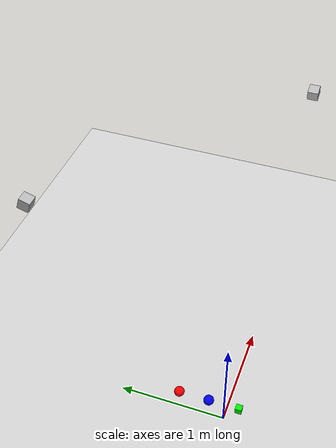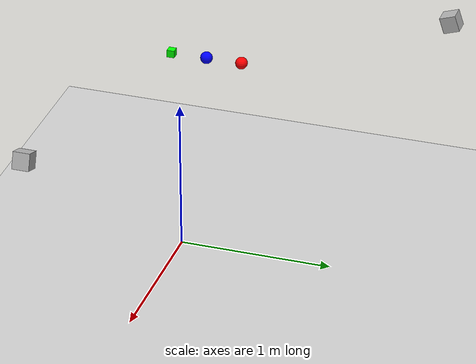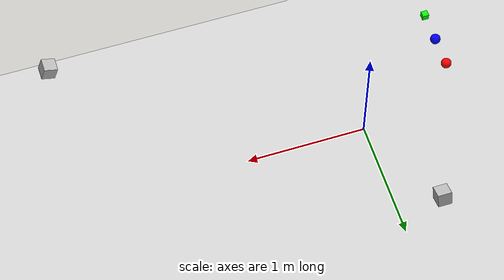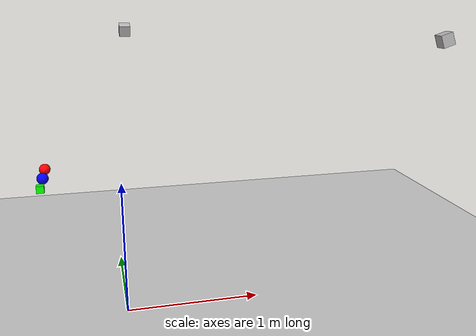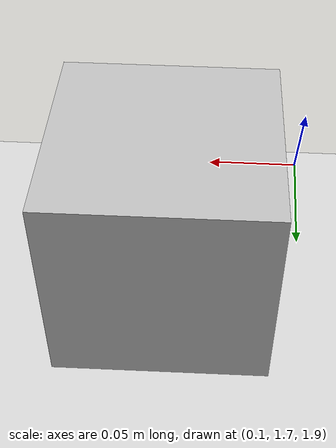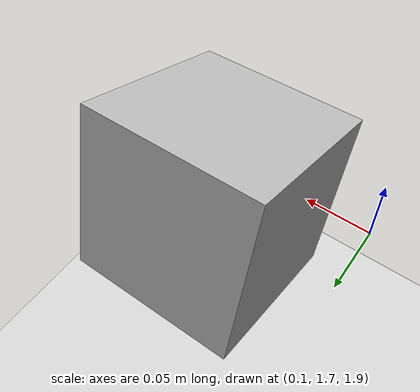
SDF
<sdf version="1.9">
 <world name="ur_simulation_world">
  <physics name="1ms" type="ignored">
   <max_step_size>0.001</max_step_size>
   <real_time_factor>1</real_time_factor>
   <real_time_update_rate>1000</real_time_update_rate>
  </physics>
  <plugin name="ignition::gazebo::systems::Physics" filename="ignition-gazebo-physics-system"/>
  <plugin name="ignition::gazebo::systems::UserCommands" filename="ignition-gazebo-user-commands-system"/>
  <plugin name="ignition::gazebo::systems::SceneBroadcaster" filename="ignition-gazebo-scene-broadcaster-system"/>
  <plugin name="ignition::gazebo::systems::Contact" filename="ignition-gazebo-contact-system"/>
  <gravity>0 0 -9.8</gravity>
  <magnetic_field>6e-06 2.3e-05 -4.2e-05</magnetic_field>
  <atmosphere type="adiabatic"/>
  <scene><ambient>0.4 0.4 0.4 1</ambient><background>0.7 0.7 0.7 1</background><shadows>true</shadows></scene>
  <model name="ground_plane">
   <static>true</static>
   <link name="link">
    <collision name="collision">
     <geometry><plane><normal>0 0 1</normal><size>100 100</size></plane></geometry>
    </collision>
    <visual name="visual">
     <geometry><plane><normal>0 0 1</normal><size>100 100</size></plane></geometry>
     <material>
      <ambient>0.8 0.8 0.8 1</ambient>
      <diffuse>0.8 0.8 0.8 1</diffuse>
      <specular>0.8 0.8 0.8 1</specular>
     </material>
    </visual>
    <inertial>
     <mass>1</mass>
     <inertia><ixx>1</ixx><ixy>0</ixy><ixz>0</ixz><iyy>1</iyy><iyz>0</iyz><izz>1</izz></inertia>
    </inertial>
   </link>
  </model>
  <light name="sun" type="directional">
   <pose>0 0 10 0 -0 0</pose>
   <intensity>1</intensity>
   <direction>-0.5 0.1 -0.9</direction>
   <diffuse>0.8 0.8 0.8 1</diffuse>
   <specular>0.2 0.2 0.2 1</specular>
   <attenuation>
    <range>1000</range>
    <linear>0.01</linear>
    <constant>0.90000000000000002</constant>
    <quadratic>0.001</quadratic>
   </attenuation>
   <spot><inner_angle>0</inner_angle><outer_angle>0</outer_angle><falloff>0</falloff></spot>
  </light>
  <model name="red_sphere">
   <pose>-0.5308 0.2368 1.0805 0 -0 0</pose>
   <link name="red_sphere_link">
    <inertial>
     <inertia>
      <ixx>8.192e-7</ixx>
      <ixy>0</ixy>
      <ixz>0</ixz>
      <iyy>8.192e-7</iyy>
      <iyz>0</iyz>
      <izz>8.192e-7</izz>
     </inertia>
     <mass>0.000512</mass>
    </inertial>
    <collision name="red_sphere_collision">
     <geometry><sphere><radius>0.04</radius></sphere></geometry>
     <surface><friction><ode><mu>1</mu><mu2>1</mu2></ode></friction></surface>
    </collision>
    <visual name="red_sphere_visual">
     <geometry><sphere><radius>0.04</radius></sphere></geometry>
     <material><ambient>1 0 0 1</ambient><diffuse>1 0 0 1</diffuse><specular>1 1 1 1</specular></material>
    </visual>
   </link>
   <static>false</static>
  </model>
  <model name="blue_sphere">
   <pose>-0.5308 0.00 1.0805 0 -0 0</pose>
   <link name="blue_sphere_link">
    <inertial>
     <inertia>
      <ixx>8.192e-7</ixx>
      <ixy>0</ixy>
      <ixz>0</ixz>
      <iyy>8.192e-7</iyy>
      <iyz>0</iyz>
      <izz>8.192e-7</izz>
     </inertia>
     <mass>0.000512</mass>
    </inertial>
    <collision name="blue_sphere_collision">
     <geometry><sphere><radius>0.04</radius></sphere></geometry>
     <surface><friction><ode><mu>1</mu><mu2>1</mu2></ode></friction></surface>
    </collision>
    <visual name="blue_sphere_visual">
     <geometry><sphere><radius>0.04</radius></sphere></geometry>
     <material><ambient>0 0 1 1</ambient><diffuse>0 0 1 1</diffuse><specular>1 1 1 1</specular></material>
    </visual>
   </link>
   <static>false</static>
  </model>
  <model name="green_box">
   <pose>-0.5308 -0.2368 1.0805 0 -0 0</pose>
   <link name="green_box_link">
    <inertial>
     <inertia>
      <ixx>5.20833e-8</ixx>
      <ixy>0</ixy>
      <ixz>0</ixz>
      <iyy>5.20833e-8</iyy>
      <iyz>0</iyz>
      <izz>5.20833e-8</izz>
     </inertia>
     <mass>0.000125</mass>
    </inertial>
    <collision name="box_collision">
     <geometry><box><size>0.05 0.05 0.05</size></box></geometry>
     <surface><friction><ode><mu>1</mu><mu2>1</mu2></ode></friction></surface>
    </collision>
    <visual name="box_visual">
     <geometry><box><size>0.05 0.05 0.05</size></box></geometry>
     <material><ambient>0 1 0 1</ambient><diffuse>0 1 0 1</diffuse><specular>1 1 1 1</specular></material>
    </visual>
   </link>
   <static>false</static>
  </model>
  <model name="camera1">
   <pose>2.54 0.0031 1.943 0.0 0.3146 3.14</pose>
   <link name="camera1_link">
    <pose>0.05 0.05 0.05 0 0 0</pose>
    <collision name="camera_1_collision"><geometry><box><size>0.1 0.1 0.1</size></box></geometry></collision>
    <visual name="camera_1_visual"><geometry><box><size>0.1 0.1 0.1</size></box></geometry></visual>
    <sensor name="camera1" type="camera">
     <camera>
      <horizontal_fov>1.047</horizontal_fov>
      <image><width>960</width><height>720</height><format>R8G8B8</format></image>
      <clip><near>0.2</near><far>300</far></clip>
     </camera>
     <always_on>1</always_on>
     <update_rate>30</update_rate>
     <visualize>true</visualize>
     <topic>image1</topic>
     <plugin filename="ignition-gazebo-sensors-system" name="ignition::gazebo::systems::Sensors"/>
    </sensor>
   </link>
   <static>true</static>
  </model>
  <model name="camera2">
   <pose>0.12 1.84 1.943 0.0 0.3146 -1.57</pose>
   <link name="camera2_link">
    <pose>0.05 0.05 0.05 0 0 0</pose>
    <collision name="camera_2_collision"><geometry><box><size>0.1 0.1 0.1</size></box></geometry></collision>
    <visual name="camera_2_visual"><geometry><box><size>0.1 0.1 0.1</size></box></geometry></visual>
    <sensor name="camera2" type="camera">
     <camera>
      <horizontal_fov>1.047</horizontal_fov>
      <image><width>960</width><height>720</height><format>R8G8B8</format></image>
      <clip><near>0.2</near><far>300</far></clip>
     </camera>
     <always_on>1</always_on>
     <update_rate>30</update_rate>
     <visualize>true</visualize>
     <topic>image2</topic>
    </sensor>
   </link>
   <static>true</static>
  </model>
 </world>
</sdf>
